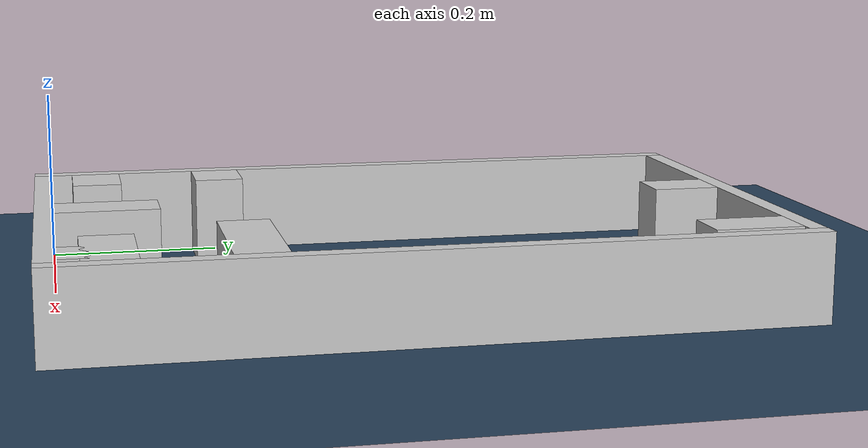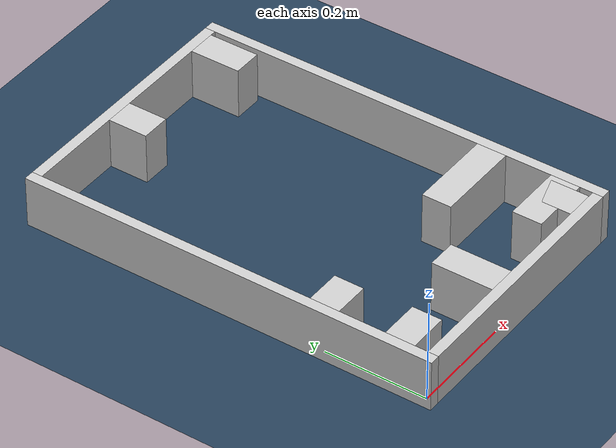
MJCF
<?xml version="1.0" ?>
<mujoco model="generated_real_template">
  <compiler angle="degree"/>
  <option timestep="0.002" integrator="implicitfast" iterations="100" cone="elliptic"/>
  <default>
    <geom density="1"/>
  </default>
  <asset>
    <texture builtin="gradient" height="3072" rgb1="0.3 0.5 0.7" rgb2="0 0 0" type="skybox" width="512"/>
    <texture builtin="checker" height="300" mark="edge" markrgb="0.8 0.8 0.8" name="groundplane" rgb1="0.2 0.3 0.4" rgb2="0.1 0.2 0.3" type="2d" width="300"/>
    <material name="groundplane" reflectance="0.2" texrepeat="5 5" texture="groundplane" texuniform="true"/>
  </asset>
  <worldbody>
    <light dir="0 0 -1" directional="true" pos="0 0 1.5"/>
    <geom name="floor" type="plane" condim="4" friction="0.5 0.005 0.001" material="groundplane" size="0 0 0.05"/>
    <body name="walls">
      <geom name="wall_boundary_left" type="box" condim="4" friction="1.0 0.005 0.0001" rgba="0.8 0.8 0.8 1" pos="-0.010000 0.387500 0.050000" euler="0 0 0.000000" size="0.010000 0.407500 0.050000"/>
      <geom name="wall_boundary_right" type="box" condim="4" friction="1.0 0.005 0.0001" rgba="0.8 0.8 0.8 1" pos="0.500000 0.387500 0.050000" euler="0 0 0.000000" size="0.010000 0.407500 0.050000"/>
      <geom name="wall_boundary_bottom" type="box" condim="4" friction="1.0 0.005 0.0001" rgba="0.8 0.8 0.8 1" pos="0.245000 -0.010000 0.050000" euler="0 0 0.000000" size="0.245000 0.010000 0.050000"/>
      <geom name="wall_boundary_top" type="box" condim="4" friction="1.0 0.005 0.0001" rgba="0.8 0.8 0.8 1" pos="0.245000 0.785000 0.050000" euler="0 0 0.000000" size="0.245000 0.010000 0.050000"/>
      <geom name="wall_inner_1_1" type="box" condim="4" friction="1.0 0.005 0.0001" rgba="0.8 0.8 0.8 1" pos="0.034769 0.200294 0.050000" euler="0 0 0.000000" size="0.034769 0.028500 0.050000"/>
      <geom name="wall_inner_1_2" type="box" condim="4" friction="1.0 0.005 0.0001" rgba="0.8 0.8 0.8 1" pos="0.406683 0.200294 0.050000" euler="0 0 0.000000" size="0.083317 0.028500 0.050000"/>
      <geom name="wall_inner_2_1" type="box" condim="4" friction="1.0 0.005 0.0001" rgba="0.8 0.8 0.8 1" pos="0.214459 0.058890 0.050000" euler="0 0 90.000000" size="0.058890 0.028500 0.050000"/>
      <geom name="wall_inner_2_2" type="box" condim="4" friction="1.0 0.005 0.0001" rgba="0.8 0.8 0.8 1" pos="0.214459 0.736485 0.050000" euler="0 0 90.000000" size="0.038515 0.028500 0.050000"/>
      <geom name="wall_inner_3_1" type="box" condim="4" friction="1.0 0.005 0.0001" rgba="0.8 0.8 0.8 1" pos="0.038629 0.053551 0.050000" euler="0 0 0.000000" size="0.038629 0.028500 0.050000"/>
      <geom name="wall_inner_3_2" type="box" condim="4" friction="1.0 0.005 0.0001" rgba="0.8 0.8 0.8 1" pos="0.430833 0.053551 0.050000" euler="0 0 0.000000" size="0.059167 0.028500 0.050000"/>
      <geom name="wall_inner_4_1" type="box" condim="4" friction="1.0 0.005 0.0001" rgba="0.8 0.8 0.8 1" pos="0.450048 0.040706 0.050000" euler="0 0 90.000000" size="0.040706 0.028500 0.050000"/>
      <geom name="wall_inner_4_2" type="box" condim="4" friction="1.0 0.005 0.0001" rgba="0.8 0.8 0.8 1" pos="0.450048 0.725657 0.050000" euler="0 0 90.000000" size="0.049343 0.028500 0.050000"/>
    </body>
  </worldbody>
</mujoco>
